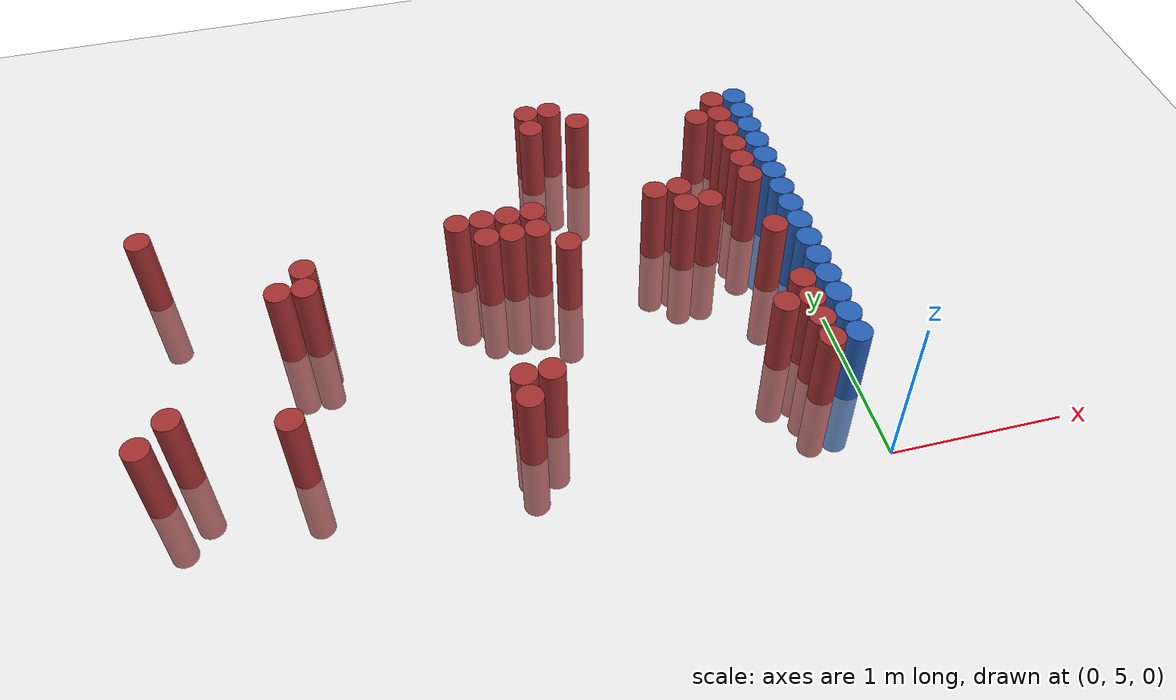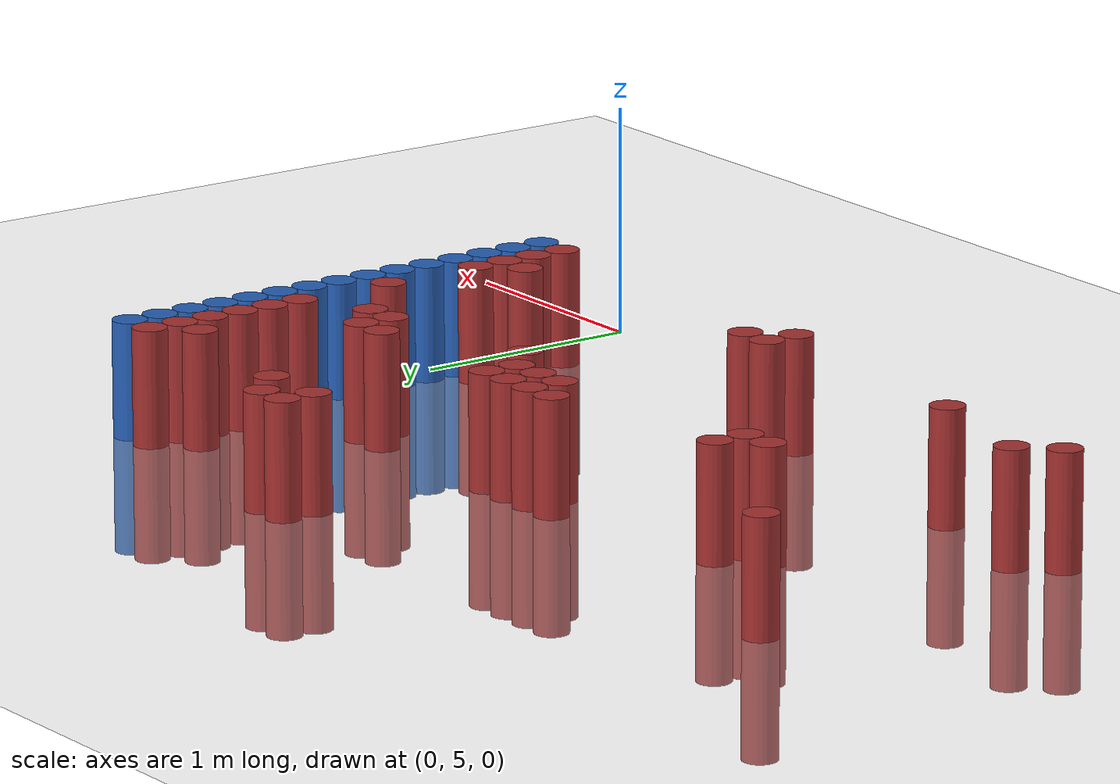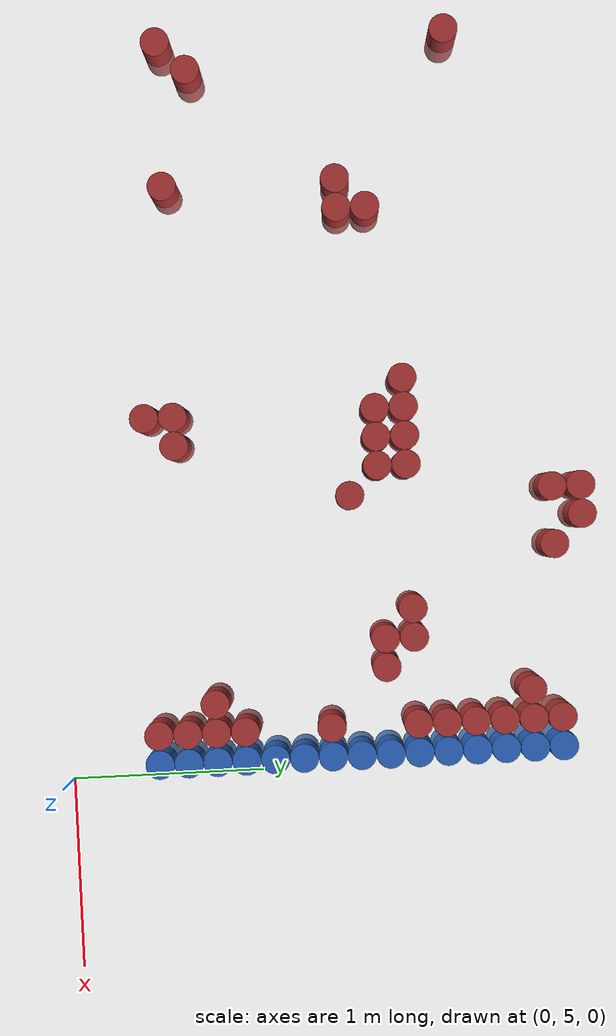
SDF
<sdf version="1.6">
 <world name="default">
  <model name="ground_plane">
   <static>1</static>
   <link name="link">
    <collision name="collision">
     <geometry><plane><normal>0 0 1</normal><size>100 100</size></plane></geometry>
     <surface><friction><ode><mu>100</mu><mu2>50</mu2></ode></friction></surface>
    </collision>
    <visual name="visual">
     <cast_shadows>0</cast_shadows>
     <geometry><plane><normal>0 0 1</normal><size>100 100</size></plane></geometry>
     <material>
      <script><uri>file://media/materials/scripts/gazebo.material</uri><name>Gazebo/Grey</name></script>
     </material>
    </visual>
   </link>
  </model>
  <model name="unit_cylinder_163">
   <static>1</static>
   <pose>-3.825000 5.625000 0.000000 0.000000 0.000000 0.000000</pose>
   <link name="link">
    <inertial>
     <mass>1</mass>
     <inertia><ixx>0.145833</ixx><ixy>0</ixy><ixz>0</ixz><iyy>0.145833</iyy><iyz>0</iyz><izz>0.125</izz></inertia>
    </inertial>
    <collision name="collision">
     <geometry><cylinder><radius>0.075000</radius><length>1</length></cylinder></geometry>
    </collision>
    <visual name="visual">
     <geometry><cylinder><radius>0.075000</radius><length>1</length></cylinder></geometry>
     <material>
      <ambient>0.648000 0.192000 0.192000 1</ambient>
      <diffuse>0.648000 0.192000 0.192000 1</diffuse>
     </material>
     <material>
      <script><name>Gazebo/Grey</name><uri>file://media/materials/scripts/gazebo.material</uri></script>
     </material>
    </visual>
   </link>
  </model>
  <model name="unit_cylinder_164">
   <static>1</static>
   <pose>-3.825000 7.125000 0.000000 0.000000 0.000000 0.000000</pose>
   <link name="link">
    <inertial>
     <mass>1</mass>
     <inertia><ixx>0.145833</ixx><ixy>0</ixy><ixz>0</ixz><iyy>0.145833</iyy><iyz>0</iyz><izz>0.125</izz></inertia>
    </inertial>
    <collision name="collision">
     <geometry><cylinder><radius>0.075000</radius><length>1</length></cylinder></geometry>
    </collision>
    <visual name="visual">
     <geometry><cylinder><radius>0.075000</radius><length>1</length></cylinder></geometry>
     <material>
      <ambient>0.648000 0.192000 0.192000 1</ambient>
      <diffuse>0.648000 0.192000 0.192000 1</diffuse>
     </material>
     <material>
      <script><name>Gazebo/Grey</name><uri>file://media/materials/scripts/gazebo.material</uri></script>
     </material>
    </visual>
   </link>
  </model>
  <model name="unit_cylinder_165">
   <static>1</static>
   <pose>-3.675000 5.775000 0.000000 0.000000 0.000000 0.000000</pose>
   <link name="link">
    <inertial>
     <mass>1</mass>
     <inertia><ixx>0.145833</ixx><ixy>0</ixy><ixz>0</ixz><iyy>0.145833</iyy><iyz>0</iyz><izz>0.125</izz></inertia>
    </inertial>
    <collision name="collision">
     <geometry><cylinder><radius>0.075000</radius><length>1</length></cylinder></geometry>
    </collision>
    <visual name="visual">
     <geometry><cylinder><radius>0.075000</radius><length>1</length></cylinder></geometry>
     <material>
      <ambient>0.648000 0.192000 0.192000 1</ambient>
      <diffuse>0.648000 0.192000 0.192000 1</diffuse>
     </material>
     <material>
      <script><name>Gazebo/Grey</name><uri>file://media/materials/scripts/gazebo.material</uri></script>
     </material>
    </visual>
   </link>
  </model>
  <model name="unit_cylinder_167">
   <static>1</static>
   <pose>-3.075000 5.625000 0.000000 0.000000 0.000000 0.000000</pose>
   <link name="link">
    <inertial>
     <mass>1</mass>
     <inertia><ixx>0.145833</ixx><ixy>0</ixy><ixz>0</ixz><iyy>0.145833</iyy><iyz>0</iyz><izz>0.125</izz></inertia>
    </inertial>
    <collision name="collision">
     <geometry><cylinder><radius>0.075000</radius><length>1</length></cylinder></geometry>
    </collision>
    <visual name="visual">
     <geometry><cylinder><radius>0.075000</radius><length>1</length></cylinder></geometry>
     <material>
      <ambient>0.648000 0.192000 0.192000 1</ambient>
      <diffuse>0.648000 0.192000 0.192000 1</diffuse>
     </material>
     <material>
      <script><name>Gazebo/Grey</name><uri>file://media/materials/scripts/gazebo.material</uri></script>
     </material>
    </visual>
   </link>
  </model>
  <model name="unit_cylinder_168">
   <static>1</static>
   <pose>-3.075000 6.525000 0.000000 0.000000 0.000000 0.000000</pose>
   <link name="link">
    <inertial>
     <mass>1</mass>
     <inertia><ixx>0.145833</ixx><ixy>0</ixy><ixz>0</ixz><iyy>0.145833</iyy><iyz>0</iyz><izz>0.125</izz></inertia>
    </inertial>
    <collision name="collision">
     <geometry><cylinder><radius>0.075000</radius><length>1</length></cylinder></geometry>
    </collision>
    <visual name="visual">
     <geometry><cylinder><radius>0.075000</radius><length>1</length></cylinder></geometry>
     <material>
      <ambient>0.648000 0.192000 0.192000 1</ambient>
      <diffuse>0.648000 0.192000 0.192000 1</diffuse>
     </material>
     <material>
      <script><name>Gazebo/Grey</name><uri>file://media/materials/scripts/gazebo.material</uri></script>
     </material>
    </visual>
   </link>
  </model>
  <model name="unit_cylinder_170">
   <static>1</static>
   <pose>-2.925000 6.525000 0.000000 0.000000 0.000000 0.000000</pose>
   <link name="link">
    <inertial>
     <mass>1</mass>
     <inertia><ixx>0.145833</ixx><ixy>0</ixy><ixz>0</ixz><iyy>0.145833</iyy><iyz>0</iyz><izz>0.125</izz></inertia>
    </inertial>
    <collision name="collision">
     <geometry><cylinder><radius>0.075000</radius><length>1</length></cylinder></geometry>
    </collision>
    <visual name="visual">
     <geometry><cylinder><radius>0.075000</radius><length>1</length></cylinder></geometry>
     <material>
      <ambient>0.648000 0.192000 0.192000 1</ambient>
      <diffuse>0.648000 0.192000 0.192000 1</diffuse>
     </material>
     <material>
      <script><name>Gazebo/Grey</name><uri>file://media/materials/scripts/gazebo.material</uri></script>
     </material>
    </visual>
   </link>
  </model>
  <model name="unit_cylinder_171">
   <static>1</static>
   <pose>-2.925000 6.675000 0.000000 0.000000 0.000000 0.000000</pose>
   <link name="link">
    <inertial>
     <mass>1</mass>
     <inertia><ixx>0.145833</ixx><ixy>0</ixy><ixz>0</ixz><iyy>0.145833</iyy><iyz>0</iyz><izz>0.125</izz></inertia>
    </inertial>
    <collision name="collision">
     <geometry><cylinder><radius>0.075000</radius><length>1</length></cylinder></geometry>
    </collision>
    <visual name="visual">
     <geometry><cylinder><radius>0.075000</radius><length>1</length></cylinder></geometry>
     <material>
      <ambient>0.648000 0.192000 0.192000 1</ambient>
      <diffuse>0.648000 0.192000 0.192000 1</diffuse>
     </material>
     <material>
      <script><name>Gazebo/Grey</name><uri>file://media/materials/scripts/gazebo.material</uri></script>
     </material>
    </visual>
   </link>
  </model>
  <model name="unit_cylinder_184">
   <static>1</static>
   <pose>-2.025000 6.825000 0.000000 0.000000 0.000000 0.000000</pose>
   <link name="link">
    <inertial>
     <mass>1</mass>
     <inertia><ixx>0.145833</ixx><ixy>0</ixy><ixz>0</ixz><iyy>0.145833</iyy><iyz>0</iyz><izz>0.125</izz></inertia>
    </inertial>
    <collision name="collision">
     <geometry><cylinder><radius>0.075000</radius><length>1</length></cylinder></geometry>
    </collision>
    <visual name="visual">
     <geometry><cylinder><radius>0.075000</radius><length>1</length></cylinder></geometry>
     <material>
      <ambient>0.648000 0.192000 0.192000 1</ambient>
      <diffuse>0.648000 0.192000 0.192000 1</diffuse>
     </material>
     <material>
      <script><name>Gazebo/Grey</name><uri>file://media/materials/scripts/gazebo.material</uri></script>
     </material>
    </visual>
   </link>
  </model>
  <model name="unit_cylinder_185">
   <static>1</static>
   <pose>-1.875000 5.475000 0.000000 0.000000 0.000000 0.000000</pose>
   <link name="link">
    <inertial>
     <mass>1</mass>
     <inertia><ixx>0.145833</ixx><ixy>0</ixy><ixz>0</ixz><iyy>0.145833</iyy><iyz>0</iyz><izz>0.125</izz></inertia>
    </inertial>
    <collision name="collision">
     <geometry><cylinder><radius>0.075000</radius><length>1</length></cylinder></geometry>
    </collision>
    <visual name="visual">
     <geometry><cylinder><radius>0.075000</radius><length>1</length></cylinder></geometry>
     <material>
      <ambient>0.648000 0.192000 0.192000 1</ambient>
      <diffuse>0.648000 0.192000 0.192000 1</diffuse>
     </material>
     <material>
      <script><name>Gazebo/Grey</name><uri>file://media/materials/scripts/gazebo.material</uri></script>
     </material>
    </visual>
   </link>
  </model>
  <model name="unit_cylinder_186">
   <static>1</static>
   <pose>-1.875000 5.625000 0.000000 0.000000 0.000000 0.000000</pose>
   <link name="link">
    <inertial>
     <mass>1</mass>
     <inertia><ixx>0.145833</ixx><ixy>0</ixy><ixz>0</ixz><iyy>0.145833</iyy><iyz>0</iyz><izz>0.125</izz></inertia>
    </inertial>
    <collision name="collision">
     <geometry><cylinder><radius>0.075000</radius><length>1</length></cylinder></geometry>
    </collision>
    <visual name="visual">
     <geometry><cylinder><radius>0.075000</radius><length>1</length></cylinder></geometry>
     <material>
      <ambient>0.648000 0.192000 0.192000 1</ambient>
      <diffuse>0.648000 0.192000 0.192000 1</diffuse>
     </material>
     <material>
      <script><name>Gazebo/Grey</name><uri>file://media/materials/scripts/gazebo.material</uri></script>
     </material>
    </visual>
   </link>
  </model>
  <model name="unit_cylinder_187">
   <static>1</static>
   <pose>-1.875000 6.675000 0.000000 0.000000 0.000000 0.000000</pose>
   <link name="link">
    <inertial>
     <mass>1</mass>
     <inertia><ixx>0.145833</ixx><ixy>0</ixy><ixz>0</ixz><iyy>0.145833</iyy><iyz>0</iyz><izz>0.125</izz></inertia>
    </inertial>
    <collision name="collision">
     <geometry><cylinder><radius>0.075000</radius><length>1</length></cylinder></geometry>
    </collision>
    <visual name="visual">
     <geometry><cylinder><radius>0.075000</radius><length>1</length></cylinder></geometry>
     <material>
      <ambient>0.648000 0.192000 0.192000 1</ambient>
      <diffuse>0.648000 0.192000 0.192000 1</diffuse>
     </material>
     <material>
      <script><name>Gazebo/Grey</name><uri>file://media/materials/scripts/gazebo.material</uri></script>
     </material>
    </visual>
   </link>
  </model>
  <model name="unit_cylinder_188">
   <static>1</static>
   <pose>-1.875000 6.825000 0.000000 0.000000 0.000000 0.000000</pose>
   <link name="link">
    <inertial>
     <mass>1</mass>
     <inertia><ixx>0.145833</ixx><ixy>0</ixy><ixz>0</ixz><iyy>0.145833</iyy><iyz>0</iyz><izz>0.125</izz></inertia>
    </inertial>
    <collision name="collision">
     <geometry><cylinder><radius>0.075000</radius><length>1</length></cylinder></geometry>
    </collision>
    <visual name="visual">
     <geometry><cylinder><radius>0.075000</radius><length>1</length></cylinder></geometry>
     <material>
      <ambient>0.648000 0.192000 0.192000 1</ambient>
      <diffuse>0.648000 0.192000 0.192000 1</diffuse>
     </material>
     <material>
      <script><name>Gazebo/Grey</name><uri>file://media/materials/scripts/gazebo.material</uri></script>
     </material>
    </visual>
   </link>
  </model>
  <model name="unit_cylinder_190">
   <static>1</static>
   <pose>-1.725000 5.625000 0.000000 0.000000 0.000000 0.000000</pose>
   <link name="link">
    <inertial>
     <mass>1</mass>
     <inertia><ixx>0.145833</ixx><ixy>0</ixy><ixz>0</ixz><iyy>0.145833</iyy><iyz>0</iyz><izz>0.125</izz></inertia>
    </inertial>
    <collision name="collision">
     <geometry><cylinder><radius>0.075000</radius><length>1</length></cylinder></geometry>
    </collision>
    <visual name="visual">
     <geometry><cylinder><radius>0.075000</radius><length>1</length></cylinder></geometry>
     <material>
      <ambient>0.648000 0.192000 0.192000 1</ambient>
      <diffuse>0.648000 0.192000 0.192000 1</diffuse>
     </material>
     <material>
      <script><name>Gazebo/Grey</name><uri>file://media/materials/scripts/gazebo.material</uri></script>
     </material>
    </visual>
   </link>
  </model>
  <model name="unit_cylinder_191">
   <static>1</static>
   <pose>-1.725000 6.675000 0.000000 0.000000 0.000000 0.000000</pose>
   <link name="link">
    <inertial>
     <mass>1</mass>
     <inertia><ixx>0.145833</ixx><ixy>0</ixy><ixz>0</ixz><iyy>0.145833</iyy><iyz>0</iyz><izz>0.125</izz></inertia>
    </inertial>
    <collision name="collision">
     <geometry><cylinder><radius>0.075000</radius><length>1</length></cylinder></geometry>
    </collision>
    <visual name="visual">
     <geometry><cylinder><radius>0.075000</radius><length>1</length></cylinder></geometry>
     <material>
      <ambient>0.648000 0.192000 0.192000 1</ambient>
      <diffuse>0.648000 0.192000 0.192000 1</diffuse>
     </material>
     <material>
      <script><name>Gazebo/Grey</name><uri>file://media/materials/scripts/gazebo.material</uri></script>
     </material>
    </visual>
   </link>
  </model>
  <model name="unit_cylinder_192">
   <static>1</static>
   <pose>-1.725000 6.825000 0.000000 0.000000 0.000000 0.000000</pose>
   <link name="link">
    <inertial>
     <mass>1</mass>
     <inertia><ixx>0.145833</ixx><ixy>0</ixy><ixz>0</ixz><iyy>0.145833</iyy><iyz>0</iyz><izz>0.125</izz></inertia>
    </inertial>
    <collision name="collision">
     <geometry><cylinder><radius>0.075000</radius><length>1</length></cylinder></geometry>
    </collision>
    <visual name="visual">
     <geometry><cylinder><radius>0.075000</radius><length>1</length></cylinder></geometry>
     <material>
      <ambient>0.648000 0.192000 0.192000 1</ambient>
      <diffuse>0.648000 0.192000 0.192000 1</diffuse>
     </material>
     <material>
      <script><name>Gazebo/Grey</name><uri>file://media/materials/scripts/gazebo.material</uri></script>
     </material>
    </visual>
   </link>
  </model>
  <model name="unit_cylinder_195">
   <static>1</static>
   <pose>-1.575000 6.675000 0.000000 0.000000 0.000000 0.000000</pose>
   <link name="link">
    <inertial>
     <mass>1</mass>
     <inertia><ixx>0.145833</ixx><ixy>0</ixy><ixz>0</ixz><iyy>0.145833</iyy><iyz>0</iyz><izz>0.125</izz></inertia>
    </inertial>
    <collision name="collision">
     <geometry><cylinder><radius>0.075000</radius><length>1</length></cylinder></geometry>
    </collision>
    <visual name="visual">
     <geometry><cylinder><radius>0.075000</radius><length>1</length></cylinder></geometry>
     <material>
      <ambient>0.648000 0.192000 0.192000 1</ambient>
      <diffuse>0.648000 0.192000 0.192000 1</diffuse>
     </material>
     <material>
      <script><name>Gazebo/Grey</name><uri>file://media/materials/scripts/gazebo.material</uri></script>
     </material>
    </visual>
   </link>
  </model>
  <model name="unit_cylinder_196">
   <static>1</static>
   <pose>-1.575000 6.825000 0.000000 0.000000 0.000000 0.000000</pose>
   <link name="link">
    <inertial>
     <mass>1</mass>
     <inertia><ixx>0.145833</ixx><ixy>0</ixy><ixz>0</ixz><iyy>0.145833</iyy><iyz>0</iyz><izz>0.125</izz></inertia>
    </inertial>
    <collision name="collision">
     <geometry><cylinder><radius>0.075000</radius><length>1</length></cylinder></geometry>
    </collision>
    <visual name="visual">
     <geometry><cylinder><radius>0.075000</radius><length>1</length></cylinder></geometry>
     <material>
      <ambient>0.648000 0.192000 0.192000 1</ambient>
      <diffuse>0.648000 0.192000 0.192000 1</diffuse>
     </material>
     <material>
      <script><name>Gazebo/Grey</name><uri>file://media/materials/scripts/gazebo.material</uri></script>
     </material>
    </visual>
   </link>
  </model>
  <model name="unit_cylinder_200">
   <static>1</static>
   <pose>-1.425000 6.525000 0.000000 0.000000 0.000000 0.000000</pose>
   <link name="link">
    <inertial>
     <mass>1</mass>
     <inertia><ixx>0.145833</ixx><ixy>0</ixy><ixz>0</ixz><iyy>0.145833</iyy><iyz>0</iyz><izz>0.125</izz></inertia>
    </inertial>
    <collision name="collision">
     <geometry><cylinder><radius>0.075000</radius><length>1</length></cylinder></geometry>
    </collision>
    <visual name="visual">
     <geometry><cylinder><radius>0.075000</radius><length>1</length></cylinder></geometry>
     <material>
      <ambient>0.648000 0.192000 0.192000 1</ambient>
      <diffuse>0.648000 0.192000 0.192000 1</diffuse>
     </material>
     <material>
      <script><name>Gazebo/Grey</name><uri>file://media/materials/scripts/gazebo.material</uri></script>
     </material>
    </visual>
   </link>
  </model>
  <model name="unit_cylinder_201">
   <static>1</static>
   <pose>-1.425000 7.575000 0.000000 0.000000 0.000000 0.000000</pose>
   <link name="link">
    <inertial>
     <mass>1</mass>
     <inertia><ixx>0.145833</ixx><ixy>0</ixy><ixz>0</ixz><iyy>0.145833</iyy><iyz>0</iyz><izz>0.125</izz></inertia>
    </inertial>
    <collision name="collision">
     <geometry><cylinder><radius>0.075000</radius><length>1</length></cylinder></geometry>
    </collision>
    <visual name="visual">
     <geometry><cylinder><radius>0.075000</radius><length>1</length></cylinder></geometry>
     <material>
      <ambient>0.648000 0.192000 0.192000 1</ambient>
      <diffuse>0.648000 0.192000 0.192000 1</diffuse>
     </material>
     <material>
      <script><name>Gazebo/Grey</name><uri>file://media/materials/scripts/gazebo.material</uri></script>
     </material>
    </visual>
   </link>
  </model>
  <model name="unit_cylinder_202">
   <static>1</static>
   <pose>-1.425000 7.725000 0.000000 0.000000 0.000000 0.000000</pose>
   <link name="link">
    <inertial>
     <mass>1</mass>
     <inertia><ixx>0.145833</ixx><ixy>0</ixy><ixz>0</ixz><iyy>0.145833</iyy><iyz>0</iyz><izz>0.125</izz></inertia>
    </inertial>
    <collision name="collision">
     <geometry><cylinder><radius>0.075000</radius><length>1</length></cylinder></geometry>
    </collision>
    <visual name="visual">
     <geometry><cylinder><radius>0.075000</radius><length>1</length></cylinder></geometry>
     <material>
      <ambient>0.648000 0.192000 0.192000 1</ambient>
      <diffuse>0.648000 0.192000 0.192000 1</diffuse>
     </material>
     <material>
      <script><name>Gazebo/Grey</name><uri>file://media/materials/scripts/gazebo.material</uri></script>
     </material>
    </visual>
   </link>
  </model>
  <model name="unit_cylinder_207">
   <static>1</static>
   <pose>-1.275000 7.725000 0.000000 0.000000 0.000000 0.000000</pose>
   <link name="link">
    <inertial>
     <mass>1</mass>
     <inertia><ixx>0.145833</ixx><ixy>0</ixy><ixz>0</ixz><iyy>0.145833</iyy><iyz>0</iyz><izz>0.125</izz></inertia>
    </inertial>
    <collision name="collision">
     <geometry><cylinder><radius>0.075000</radius><length>1</length></cylinder></geometry>
    </collision>
    <visual name="visual">
     <geometry><cylinder><radius>0.075000</radius><length>1</length></cylinder></geometry>
     <material>
      <ambient>0.648000 0.192000 0.192000 1</ambient>
      <diffuse>0.648000 0.192000 0.192000 1</diffuse>
     </material>
     <material>
      <script><name>Gazebo/Grey</name><uri>file://media/materials/scripts/gazebo.material</uri></script>
     </material>
    </visual>
   </link>
  </model>
  <model name="unit_cylinder_211">
   <static>1</static>
   <pose>-1.125000 7.575000 0.000000 0.000000 0.000000 0.000000</pose>
   <link name="link">
    <inertial>
     <mass>1</mass>
     <inertia><ixx>0.145833</ixx><ixy>0</ixy><ixz>0</ixz><iyy>0.145833</iyy><iyz>0</iyz><izz>0.125</izz></inertia>
    </inertial>
    <collision name="collision">
     <geometry><cylinder><radius>0.075000</radius><length>1</length></cylinder></geometry>
    </collision>
    <visual name="visual">
     <geometry><cylinder><radius>0.075000</radius><length>1</length></cylinder></geometry>
     <material>
      <ambient>0.648000 0.192000 0.192000 1</ambient>
      <diffuse>0.648000 0.192000 0.192000 1</diffuse>
     </material>
     <material>
      <script><name>Gazebo/Grey</name><uri>file://media/materials/scripts/gazebo.material</uri></script>
     </material>
    </visual>
   </link>
  </model>
  <model name="unit_cylinder_212">
   <static>1</static>
   <pose>-0.825000 6.825000 0.000000 0.000000 0.000000 0.000000</pose>
   <link name="link">
    <inertial>
     <mass>1</mass>
     <inertia><ixx>0.145833</ixx><ixy>0</ixy><ixz>0</ixz><iyy>0.145833</iyy><iyz>0</iyz><izz>0.125</izz></inertia>
    </inertial>
    <collision name="collision">
     <geometry><cylinder><radius>0.075000</radius><length>1</length></cylinder></geometry>
    </collision>
    <visual name="visual">
     <geometry><cylinder><radius>0.075000</radius><length>1</length></cylinder></geometry>
     <material>
      <ambient>0.648000 0.192000 0.192000 1</ambient>
      <diffuse>0.648000 0.192000 0.192000 1</diffuse>
     </material>
     <material>
      <script><name>Gazebo/Grey</name><uri>file://media/materials/scripts/gazebo.material</uri></script>
     </material>
    </visual>
   </link>
  </model>
  <model name="unit_cylinder_214">
   <static>1</static>
   <pose>-0.675000 6.675000 0.000000 0.000000 0.000000 0.000000</pose>
   <link name="link">
    <inertial>
     <mass>1</mass>
     <inertia><ixx>0.145833</ixx><ixy>0</ixy><ixz>0</ixz><iyy>0.145833</iyy><iyz>0</iyz><izz>0.125</izz></inertia>
    </inertial>
    <collision name="collision">
     <geometry><cylinder><radius>0.075000</radius><length>1</length></cylinder></geometry>
    </collision>
    <visual name="visual">
     <geometry><cylinder><radius>0.075000</radius><length>1</length></cylinder></geometry>
     <material>
      <ambient>0.648000 0.192000 0.192000 1</ambient>
      <diffuse>0.648000 0.192000 0.192000 1</diffuse>
     </material>
     <material>
      <script><name>Gazebo/Grey</name><uri>file://media/materials/scripts/gazebo.material</uri></script>
     </material>
    </visual>
   </link>
  </model>
  <model name="unit_cylinder_215">
   <static>1</static>
   <pose>-0.675000 6.825000 0.000000 0.000000 0.000000 0.000000</pose>
   <link name="link">
    <inertial>
     <mass>1</mass>
     <inertia><ixx>0.145833</ixx><ixy>0</ixy><ixz>0</ixz><iyy>0.145833</iyy><iyz>0</iyz><izz>0.125</izz></inertia>
    </inertial>
    <collision name="collision">
     <geometry><cylinder><radius>0.075000</radius><length>1</length></cylinder></geometry>
    </collision>
    <visual name="visual">
     <geometry><cylinder><radius>0.075000</radius><length>1</length></cylinder></geometry>
     <material>
      <ambient>0.648000 0.192000 0.192000 1</ambient>
      <diffuse>0.648000 0.192000 0.192000 1</diffuse>
     </material>
     <material>
      <script><name>Gazebo/Grey</name><uri>file://media/materials/scripts/gazebo.material</uri></script>
     </material>
    </visual>
   </link>
  </model>
  <model name="unit_cylinder_218">
   <static>1</static>
   <pose>-0.525000 6.675000 0.000000 0.000000 0.000000 0.000000</pose>
   <link name="link">
    <inertial>
     <mass>1</mass>
     <inertia><ixx>0.145833</ixx><ixy>0</ixy><ixz>0</ixz><iyy>0.145833</iyy><iyz>0</iyz><izz>0.125</izz></inertia>
    </inertial>
    <collision name="collision">
     <geometry><cylinder><radius>0.075000</radius><length>1</length></cylinder></geometry>
    </collision>
    <visual name="visual">
     <geometry><cylinder><radius>0.075000</radius><length>1</length></cylinder></geometry>
     <material>
      <ambient>0.648000 0.192000 0.192000 1</ambient>
      <diffuse>0.648000 0.192000 0.192000 1</diffuse>
     </material>
     <material>
      <script><name>Gazebo/Grey</name><uri>file://media/materials/scripts/gazebo.material</uri></script>
     </material>
    </visual>
   </link>
  </model>
  <model name="unit_cylinder_219">
   <static>1</static>
   <pose>-0.375000 5.775000 0.000000 0.000000 0.000000 0.000000</pose>
   <link name="link">
    <inertial>
     <mass>1</mass>
     <inertia><ixx>0.145833</ixx><ixy>0</ixy><ixz>0</ixz><iyy>0.145833</iyy><iyz>0</iyz><izz>0.125</izz></inertia>
    </inertial>
    <collision name="collision">
     <geometry><cylinder><radius>0.075000</radius><length>1</length></cylinder></geometry>
    </collision>
    <visual name="visual">
     <geometry><cylinder><radius>0.075000</radius><length>1</length></cylinder></geometry>
     <material>
      <ambient>0.648000 0.192000 0.192000 1</ambient>
      <diffuse>0.648000 0.192000 0.192000 1</diffuse>
     </material>
     <material>
      <script><name>Gazebo/Grey</name><uri>file://media/materials/scripts/gazebo.material</uri></script>
     </material>
    </visual>
   </link>
  </model>
  <model name="unit_cylinder_220">
   <static>1</static>
   <pose>-0.375000 7.425000 0.000000 0.000000 0.000000 0.000000</pose>
   <link name="link">
    <inertial>
     <mass>1</mass>
     <inertia><ixx>0.145833</ixx><ixy>0</ixy><ixz>0</ixz><iyy>0.145833</iyy><iyz>0</iyz><izz>0.125</izz></inertia>
    </inertial>
    <collision name="collision">
     <geometry><cylinder><radius>0.075000</radius><length>1</length></cylinder></geometry>
    </collision>
    <visual name="visual">
     <geometry><cylinder><radius>0.075000</radius><length>1</length></cylinder></geometry>
     <material>
      <ambient>0.648000 0.192000 0.192000 1</ambient>
      <diffuse>0.648000 0.192000 0.192000 1</diffuse>
     </material>
     <material>
      <script><name>Gazebo/Grey</name><uri>file://media/materials/scripts/gazebo.material</uri></script>
     </material>
    </visual>
   </link>
  </model>
  <model name="unit_cylinder_224">
   <static>1</static>
   <pose>-0.225000 5.475000 0.000000 0.000000 0.000000 0.000000</pose>
   <link name="link">
    <inertial>
     <mass>1</mass>
     <inertia><ixx>0.145833</ixx><ixy>0</ixy><ixz>0</ixz><iyy>0.145833</iyy><iyz>0</iyz><izz>0.125</izz></inertia>
    </inertial>
    <collision name="collision">
     <geometry><cylinder><radius>0.075000</radius><length>1</length></cylinder></geometry>
    </collision>
    <visual name="visual">
     <geometry><cylinder><radius>0.075000</radius><length>1</length></cylinder></geometry>
     <material>
      <ambient>0.648000 0.192000 0.192000 1</ambient>
      <diffuse>0.648000 0.192000 0.192000 1</diffuse>
     </material>
     <material>
      <script><name>Gazebo/Grey</name><uri>file://media/materials/scripts/gazebo.material</uri></script>
     </material>
    </visual>
   </link>
  </model>
  <model name="unit_cylinder_225">
   <static>1</static>
   <pose>-0.225000 5.625000 0.000000 0.000000 0.000000 0.000000</pose>
   <link name="link">
    <inertial>
     <mass>1</mass>
     <inertia><ixx>0.145833</ixx><ixy>0</ixy><ixz>0</ixz><iyy>0.145833</iyy><iyz>0</iyz><izz>0.125</izz></inertia>
    </inertial>
    <collision name="collision">
     <geometry><cylinder><radius>0.075000</radius><length>1</length></cylinder></geometry>
    </collision>
    <visual name="visual">
     <geometry><cylinder><radius>0.075000</radius><length>1</length></cylinder></geometry>
     <material>
      <ambient>0.648000 0.192000 0.192000 1</ambient>
      <diffuse>0.648000 0.192000 0.192000 1</diffuse>
     </material>
     <material>
      <script><name>Gazebo/Grey</name><uri>file://media/materials/scripts/gazebo.material</uri></script>
     </material>
    </visual>
   </link>
  </model>
  <model name="unit_cylinder_226">
   <static>1</static>
   <pose>-0.225000 5.775000 0.000000 0.000000 0.000000 0.000000</pose>
   <link name="link">
    <inertial>
     <mass>1</mass>
     <inertia><ixx>0.145833</ixx><ixy>0</ixy><ixz>0</ixz><iyy>0.145833</iyy><iyz>0</iyz><izz>0.125</izz></inertia>
    </inertial>
    <collision name="collision">
     <geometry><cylinder><radius>0.075000</radius><length>1</length></cylinder></geometry>
    </collision>
    <visual name="visual">
     <geometry><cylinder><radius>0.075000</radius><length>1</length></cylinder></geometry>
     <material>
      <ambient>0.648000 0.192000 0.192000 1</ambient>
      <diffuse>0.648000 0.192000 0.192000 1</diffuse>
     </material>
     <material>
      <script><name>Gazebo/Grey</name><uri>file://media/materials/scripts/gazebo.material</uri></script>
     </material>
    </visual>
   </link>
  </model>
  <model name="unit_cylinder_227">
   <static>1</static>
   <pose>-0.225000 5.925000 0.000000 0.000000 0.000000 0.000000</pose>
   <link name="link">
    <inertial>
     <mass>1</mass>
     <inertia><ixx>0.145833</ixx><ixy>0</ixy><ixz>0</ixz><iyy>0.145833</iyy><iyz>0</iyz><izz>0.125</izz></inertia>
    </inertial>
    <collision name="collision">
     <geometry><cylinder><radius>0.075000</radius><length>1</length></cylinder></geometry>
    </collision>
    <visual name="visual">
     <geometry><cylinder><radius>0.075000</radius><length>1</length></cylinder></geometry>
     <material>
      <ambient>0.648000 0.192000 0.192000 1</ambient>
      <diffuse>0.648000 0.192000 0.192000 1</diffuse>
     </material>
     <material>
      <script><name>Gazebo/Grey</name><uri>file://media/materials/scripts/gazebo.material</uri></script>
     </material>
    </visual>
   </link>
  </model>
  <model name="unit_cylinder_228">
   <static>1</static>
   <pose>-0.225000 6.375000 0.000000 0.000000 0.000000 0.000000</pose>
   <link name="link">
    <inertial>
     <mass>1</mass>
     <inertia><ixx>0.145833</ixx><ixy>0</ixy><ixz>0</ixz><iyy>0.145833</iyy><iyz>0</iyz><izz>0.125</izz></inertia>
    </inertial>
    <collision name="collision">
     <geometry><cylinder><radius>0.075000</radius><length>1</length></cylinder></geometry>
    </collision>
    <visual name="visual">
     <geometry><cylinder><radius>0.075000</radius><length>1</length></cylinder></geometry>
     <material>
      <ambient>0.648000 0.192000 0.192000 1</ambient>
      <diffuse>0.648000 0.192000 0.192000 1</diffuse>
     </material>
     <material>
      <script><name>Gazebo/Grey</name><uri>file://media/materials/scripts/gazebo.material</uri></script>
     </material>
    </visual>
   </link>
  </model>
  <model name="unit_cylinder_229">
   <static>1</static>
   <pose>-0.225000 6.825000 0.000000 0.000000 0.000000 0.000000</pose>
   <link name="link">
    <inertial>
     <mass>1</mass>
     <inertia><ixx>0.145833</ixx><ixy>0</ixy><ixz>0</ixz><iyy>0.145833</iyy><iyz>0</iyz><izz>0.125</izz></inertia>
    </inertial>
    <collision name="collision">
     <geometry><cylinder><radius>0.075000</radius><length>1</length></cylinder></geometry>
    </collision>
    <visual name="visual">
     <geometry><cylinder><radius>0.075000</radius><length>1</length></cylinder></geometry>
     <material>
      <ambient>0.648000 0.192000 0.192000 1</ambient>
      <diffuse>0.648000 0.192000 0.192000 1</diffuse>
     </material>
     <material>
      <script><name>Gazebo/Grey</name><uri>file://media/materials/scripts/gazebo.material</uri></script>
     </material>
    </visual>
   </link>
  </model>
  <model name="unit_cylinder_230">
   <static>1</static>
   <pose>-0.225000 6.975000 0.000000 0.000000 0.000000 0.000000</pose>
   <link name="link">
    <inertial>
     <mass>1</mass>
     <inertia><ixx>0.145833</ixx><ixy>0</ixy><ixz>0</ixz><iyy>0.145833</iyy><iyz>0</iyz><izz>0.125</izz></inertia>
    </inertial>
    <collision name="collision">
     <geometry><cylinder><radius>0.075000</radius><length>1</length></cylinder></geometry>
    </collision>
    <visual name="visual">
     <geometry><cylinder><radius>0.075000</radius><length>1</length></cylinder></geometry>
     <material>
      <ambient>0.648000 0.192000 0.192000 1</ambient>
      <diffuse>0.648000 0.192000 0.192000 1</diffuse>
     </material>
     <material>
      <script><name>Gazebo/Grey</name><uri>file://media/materials/scripts/gazebo.material</uri></script>
     </material>
    </visual>
   </link>
  </model>
  <model name="unit_cylinder_231">
   <static>1</static>
   <pose>-0.225000 7.125000 0.000000 0.000000 0.000000 0.000000</pose>
   <link name="link">
    <inertial>
     <mass>1</mass>
     <inertia><ixx>0.145833</ixx><ixy>0</ixy><ixz>0</ixz><iyy>0.145833</iyy><iyz>0</iyz><izz>0.125</izz></inertia>
    </inertial>
    <collision name="collision">
     <geometry><cylinder><radius>0.075000</radius><length>1</length></cylinder></geometry>
    </collision>
    <visual name="visual">
     <geometry><cylinder><radius>0.075000</radius><length>1</length></cylinder></geometry>
     <material>
      <ambient>0.648000 0.192000 0.192000 1</ambient>
      <diffuse>0.648000 0.192000 0.192000 1</diffuse>
     </material>
     <material>
      <script><name>Gazebo/Grey</name><uri>file://media/materials/scripts/gazebo.material</uri></script>
     </material>
    </visual>
   </link>
  </model>
  <model name="unit_cylinder_232">
   <static>1</static>
   <pose>-0.225000 7.275000 0.000000 0.000000 0.000000 0.000000</pose>
   <link name="link">
    <inertial>
     <mass>1</mass>
     <inertia><ixx>0.145833</ixx><ixy>0</ixy><ixz>0</ixz><iyy>0.145833</iyy><iyz>0</iyz><izz>0.125</izz></inertia>
    </inertial>
    <collision name="collision">
     <geometry><cylinder><radius>0.075000</radius><length>1</length></cylinder></geometry>
    </collision>
    <visual name="visual">
     <geometry><cylinder><radius>0.075000</radius><length>1</length></cylinder></geometry>
     <material>
      <ambient>0.648000 0.192000 0.192000 1</ambient>
      <diffuse>0.648000 0.192000 0.192000 1</diffuse>
     </material>
     <material>
      <script><name>Gazebo/Grey</name><uri>file://media/materials/scripts/gazebo.material</uri></script>
     </material>
    </visual>
   </link>
  </model>
  <model name="unit_cylinder_233">
   <static>1</static>
   <pose>-0.225000 7.425000 0.000000 0.000000 0.000000 0.000000</pose>
   <link name="link">
    <inertial>
     <mass>1</mass>
     <inertia><ixx>0.145833</ixx><ixy>0</ixy><ixz>0</ixz><iyy>0.145833</iyy><iyz>0</iyz><izz>0.125</izz></inertia>
    </inertial>
    <collision name="collision">
     <geometry><cylinder><radius>0.075000</radius><length>1</length></cylinder></geometry>
    </collision>
    <visual name="visual">
     <geometry><cylinder><radius>0.075000</radius><length>1</length></cylinder></geometry>
     <material>
      <ambient>0.648000 0.192000 0.192000 1</ambient>
      <diffuse>0.648000 0.192000 0.192000 1</diffuse>
     </material>
     <material>
      <script><name>Gazebo/Grey</name><uri>file://media/materials/scripts/gazebo.material</uri></script>
     </material>
    </visual>
   </link>
  </model>
  <model name="unit_cylinder_234">
   <static>1</static>
   <pose>-0.225000 7.575000 0.000000 0.000000 0.000000 0.000000</pose>
   <link name="link">
    <inertial>
     <mass>1</mass>
     <inertia><ixx>0.145833</ixx><ixy>0</ixy><ixz>0</ixz><iyy>0.145833</iyy><iyz>0</iyz><izz>0.125</izz></inertia>
    </inertial>
    <collision name="collision">
     <geometry><cylinder><radius>0.075000</radius><length>1</length></cylinder></geometry>
    </collision>
    <visual name="visual">
     <geometry><cylinder><radius>0.075000</radius><length>1</length></cylinder></geometry>
     <material>
      <ambient>0.648000 0.192000 0.192000 1</ambient>
      <diffuse>0.648000 0.192000 0.192000 1</diffuse>
     </material>
     <material>
      <script><name>Gazebo/Grey</name><uri>file://media/materials/scripts/gazebo.material</uri></script>
     </material>
    </visual>
   </link>
  </model>
  <model name="unit_cylinder_245">
   <static>1</static>
   <pose>-0.075000 5.475000 0.000000 0.000000 0.000000 0.000000</pose>
   <link name="link">
    <inertial>
     <mass>1</mass>
     <inertia><ixx>0.145833</ixx><ixy>0</ixy><ixz>0</ixz><iyy>0.145833</iyy><iyz>0</iyz><izz>0.125</izz></inertia>
    </inertial>
    <collision name="collision">
     <geometry><cylinder><radius>0.075000</radius><length>1</length></cylinder></geometry>
    </collision>
    <visual name="visual">
     <geometry><cylinder><radius>0.075000</radius><length>1</length></cylinder></geometry>
     <material>
      <ambient>0.152000 0.379000 0.720000 1</ambient>
      <diffuse>0.152000 0.379000 0.720000 1</diffuse>
     </material>
     <material>
      <script><name>Gazebo/Grey</name><uri>file://media/materials/scripts/gazebo.material</uri></script>
     </material>
    </visual>
   </link>
  </model>
  <model name="unit_cylinder_246">
   <static>1</static>
   <pose>-0.075000 5.625000 0.000000 0.000000 0.000000 0.000000</pose>
   <link name="link">
    <inertial>
     <mass>1</mass>
     <inertia><ixx>0.145833</ixx><ixy>0</ixy><ixz>0</ixz><iyy>0.145833</iyy><iyz>0</iyz><izz>0.125</izz></inertia>
    </inertial>
    <collision name="collision">
     <geometry><cylinder><radius>0.075000</radius><length>1</length></cylinder></geometry>
    </collision>
    <visual name="visual">
     <geometry><cylinder><radius>0.075000</radius><length>1</length></cylinder></geometry>
     <material>
      <ambient>0.152000 0.379000 0.720000 1</ambient>
      <diffuse>0.152000 0.379000 0.720000 1</diffuse>
     </material>
     <material>
      <script><name>Gazebo/Grey</name><uri>file://media/materials/scripts/gazebo.material</uri></script>
     </material>
    </visual>
   </link>
  </model>
  <model name="unit_cylinder_247">
   <static>1</static>
   <pose>-0.075000 5.775000 0.000000 0.000000 0.000000 0.000000</pose>
   <link name="link">
    <inertial>
     <mass>1</mass>
     <inertia><ixx>0.145833</ixx><ixy>0</ixy><ixz>0</ixz><iyy>0.145833</iyy><iyz>0</iyz><izz>0.125</izz></inertia>
    </inertial>
    <collision name="collision">
     <geometry><cylinder><radius>0.075000</radius><length>1</length></cylinder></geometry>
    </collision>
    <visual name="visual">
     <geometry><cylinder><radius>0.075000</radius><length>1</length></cylinder></geometry>
     <material>
      <ambient>0.152000 0.379000 0.720000 1</ambient>
      <diffuse>0.152000 0.379000 0.720000 1</diffuse>
     </material>
     <material>
      <script><name>Gazebo/Grey</name><uri>file://media/materials/scripts/gazebo.material</uri></script>
     </material>
    </visual>
   </link>
  </model>
  <model name="unit_cylinder_248">
   <static>1</static>
   <pose>-0.075000 5.925000 0.000000 0.000000 0.000000 0.000000</pose>
   <link name="link">
    <inertial>
     <mass>1</mass>
     <inertia><ixx>0.145833</ixx><ixy>0</ixy><ixz>0</ixz><iyy>0.145833</iyy><iyz>0</iyz><izz>0.125</izz></inertia>
    </inertial>
    <collision name="collision">
     <geometry><cylinder><radius>0.075000</radius><length>1</length></cylinder></geometry>
    </collision>
    <visual name="visual">
     <geometry><cylinder><radius>0.075000</radius><length>1</length></cylinder></geometry>
     <material>
      <ambient>0.152000 0.379000 0.720000 1</ambient>
      <diffuse>0.152000 0.379000 0.720000 1</diffuse>
     </material>
     <material>
      <script><name>Gazebo/Grey</name><uri>file://media/materials/scripts/gazebo.material</uri></script>
     </material>
    </visual>
   </link>
  </model>
  <model name="unit_cylinder_249">
   <static>1</static>
   <pose>-0.075000 6.075000 0.000000 0.000000 0.000000 0.000000</pose>
   <link name="link">
    <inertial>
     <mass>1</mass>
     <inertia><ixx>0.145833</ixx><ixy>0</ixy><ixz>0</ixz><iyy>0.145833</iyy><iyz>0</iyz><izz>0.125</izz></inertia>
    </inertial>
    <collision name="collision">
     <geometry><cylinder><radius>0.075000</radius><length>1</length></cylinder></geometry>
    </collision>
    <visual name="visual">
     <geometry><cylinder><radius>0.075000</radius><length>1</length></cylinder></geometry>
     <material>
      <ambient>0.152000 0.379000 0.720000 1</ambient>
      <diffuse>0.152000 0.379000 0.720000 1</diffuse>
     </material>
     <material>
      <script><name>Gazebo/Grey</name><uri>file://media/materials/scripts/gazebo.material</uri></script>
     </material>
    </visual>
   </link>
  </model>
  <model name="unit_cylinder_250">
   <static>1</static>
   <pose>-0.075000 6.225000 0.000000 0.000000 0.000000 0.000000</pose>
   <link name="link">
    <inertial>
     <mass>1</mass>
     <inertia><ixx>0.145833</ixx><ixy>0</ixy><ixz>0</ixz><iyy>0.145833</iyy><iyz>0</iyz><izz>0.125</izz></inertia>
    </inertial>
    <collision name="collision">
     <geometry><cylinder><radius>0.075000</radius><length>1</length></cylinder></geometry>
    </collision>
    <visual name="visual">
     <geometry><cylinder><radius>0.075000</radius><length>1</length></cylinder></geometry>
     <material>
      <ambient>0.152000 0.379000 0.720000 1</ambient>
      <diffuse>0.152000 0.379000 0.720000 1</diffuse>
     </material>
     <material>
      <script><name>Gazebo/Grey</name><uri>file://media/materials/scripts/gazebo.material</uri></script>
     </material>
    </visual>
   </link>
  </model>
  <model name="unit_cylinder_251">
   <static>1</static>
   <pose>-0.075000 6.375000 0.000000 0.000000 0.000000 0.000000</pose>
   <link name="link">
    <inertial>
     <mass>1</mass>
     <inertia><ixx>0.145833</ixx><ixy>0</ixy><ixz>0</ixz><iyy>0.145833</iyy><iyz>0</iyz><izz>0.125</izz></inertia>
    </inertial>
    <collision name="collision">
     <geometry><cylinder><radius>0.075000</radius><length>1</length></cylinder></geometry>
    </collision>
    <visual name="visual">
     <geometry><cylinder><radius>0.075000</radius><length>1</length></cylinder></geometry>
     <material>
      <ambient>0.152000 0.379000 0.720000 1</ambient>
      <diffuse>0.152000 0.379000 0.720000 1</diffuse>
     </material>
     <material>
      <script><name>Gazebo/Grey</name><uri>file://media/materials/scripts/gazebo.material</uri></script>
     </material>
    </visual>
   </link>
  </model>
  <model name="unit_cylinder_252">
   <static>1</static>
   <pose>-0.075000 6.525000 0.000000 0.000000 0.000000 0.000000</pose>
   <link name="link">
    <inertial>
     <mass>1</mass>
     <inertia><ixx>0.145833</ixx><ixy>0</ixy><ixz>0</ixz><iyy>0.145833</iyy><iyz>0</iyz><izz>0.125</izz></inertia>
    </inertial>
    <collision name="collision">
     <geometry><cylinder><radius>0.075000</radius><length>1</length></cylinder></geometry>
    </collision>
    <visual name="visual">
     <geometry><cylinder><radius>0.075000</radius><length>1</length></cylinder></geometry>
     <material>
      <ambient>0.152000 0.379000 0.720000 1</ambient>
      <diffuse>0.152000 0.379000 0.720000 1</diffuse>
     </material>
     <material>
      <script><name>Gazebo/Grey</name><uri>file://media/materials/scripts/gazebo.material</uri></script>
     </material>
    </visual>
   </link>
  </model>
  <model name="unit_cylinder_253">
   <static>1</static>
   <pose>-0.075000 6.675000 0.000000 0.000000 0.000000 0.000000</pose>
   <link name="link">
    <inertial>
     <mass>1</mass>
     <inertia><ixx>0.145833</ixx><ixy>0</ixy><ixz>0</ixz><iyy>0.145833</iyy><iyz>0</iyz><izz>0.125</izz></inertia>
    </inertial>
    <collision name="collision">
     <geometry><cylinder><radius>0.075000</radius><length>1</length></cylinder></geometry>
    </collision>
    <visual name="visual">
     <geometry><cylinder><radius>0.075000</radius><length>1</length></cylinder></geometry>
     <material>
      <ambient>0.152000 0.379000 0.720000 1</ambient>
      <diffuse>0.152000 0.379000 0.720000 1</diffuse>
     </material>
     <material>
      <script><name>Gazebo/Grey</name><uri>file://media/materials/scripts/gazebo.material</uri></script>
     </material>
    </visual>
   </link>
  </model>
  <model name="unit_cylinder_254">
   <static>1</static>
   <pose>-0.075000 6.825000 0.000000 0.000000 0.000000 0.000000</pose>
   <link name="link">
    <inertial>
     <mass>1</mass>
     <inertia><ixx>0.145833</ixx><ixy>0</ixy><ixz>0</ixz><iyy>0.145833</iyy><iyz>0</iyz><izz>0.125</izz></inertia>
    </inertial>
    <collision name="collision">
     <geometry><cylinder><radius>0.075000</radius><length>1</length></cylinder></geometry>
    </collision>
    <visual name="visual">
     <geometry><cylinder><radius>0.075000</radius><length>1</length></cylinder></geometry>
     <material>
      <ambient>0.152000 0.379000 0.720000 1</ambient>
      <diffuse>0.152000 0.379000 0.720000 1</diffuse>
     </material>
     <material>
      <script><name>Gazebo/Grey</name><uri>file://media/materials/scripts/gazebo.material</uri></script>
     </material>
    </visual>
   </link>
  </model>
  <model name="unit_cylinder_255">
   <static>1</static>
   <pose>-0.075000 6.975000 0.000000 0.000000 0.000000 0.000000</pose>
   <link name="link">
    <inertial>
     <mass>1</mass>
     <inertia><ixx>0.145833</ixx><ixy>0</ixy><ixz>0</ixz><iyy>0.145833</iyy><iyz>0</iyz><izz>0.125</izz></inertia>
    </inertial>
    <collision name="collision">
     <geometry><cylinder><radius>0.075000</radius><length>1</length></cylinder></geometry>
    </collision>
    <visual name="visual">
     <geometry><cylinder><radius>0.075000</radius><length>1</length></cylinder></geometry>
     <material>
      <ambient>0.152000 0.379000 0.720000 1</ambient>
      <diffuse>0.152000 0.379000 0.720000 1</diffuse>
     </material>
     <material>
      <script><name>Gazebo/Grey</name><uri>file://media/materials/scripts/gazebo.material</uri></script>
     </material>
    </visual>
   </link>
  </model>
  <model name="unit_cylinder_256">
   <static>1</static>
   <pose>-0.075000 7.125000 0.000000 0.000000 0.000000 0.000000</pose>
   <link name="link">
    <inertial>
     <mass>1</mass>
     <inertia><ixx>0.145833</ixx><ixy>0</ixy><ixz>0</ixz><iyy>0.145833</iyy><iyz>0</iyz><izz>0.125</izz></inertia>
    </inertial>
    <collision name="collision">
     <geometry><cylinder><radius>0.075000</radius><length>1</length></cylinder></geometry>
    </collision>
    <visual name="visual">
     <geometry><cylinder><radius>0.075000</radius><length>1</length></cylinder></geometry>
     <material>
      <ambient>0.152000 0.379000 0.720000 1</ambient>
      <diffuse>0.152000 0.379000 0.720000 1</diffuse>
     </material>
     <material>
      <script><name>Gazebo/Grey</name><uri>file://media/materials/scripts/gazebo.material</uri></script>
     </material>
    </visual>
   </link>
  </model>
  <model name="unit_cylinder_257">
   <static>1</static>
   <pose>-0.075000 7.275000 0.000000 0.000000 0.000000 0.000000</pose>
   <link name="link">
    <inertial>
     <mass>1</mass>
     <inertia><ixx>0.145833</ixx><ixy>0</ixy><ixz>0</ixz><iyy>0.145833</iyy><iyz>0</iyz><izz>0.125</izz></inertia>
    </inertial>
    <collision name="collision">
     <geometry><cylinder><radius>0.075000</radius><length>1</length></cylinder></geometry>
    </collision>
    <visual name="visual">
     <geometry><cylinder><radius>0.075000</radius><length>1</length></cylinder></geometry>
     <material>
      <ambient>0.152000 0.379000 0.720000 1</ambient>
      <diffuse>0.152000 0.379000 0.720000 1</diffuse>
     </material>
     <material>
      <script><name>Gazebo/Grey</name><uri>file://media/materials/scripts/gazebo.material</uri></script>
     </material>
    </visual>
   </link>
  </model>
  <model name="unit_cylinder_258">
   <static>1</static>
   <pose>-0.075000 7.425000 0.000000 0.000000 0.000000 0.000000</pose>
   <link name="link">
    <inertial>
     <mass>1</mass>
     <inertia><ixx>0.145833</ixx><ixy>0</ixy><ixz>0</ixz><iyy>0.145833</iyy><iyz>0</iyz><izz>0.125</izz></inertia>
    </inertial>
    <collision name="collision">
     <geometry><cylinder><radius>0.075000</radius><length>1</length></cylinder></geometry>
    </collision>
    <visual name="visual">
     <geometry><cylinder><radius>0.075000</radius><length>1</length></cylinder></geometry>
     <material>
      <ambient>0.152000 0.379000 0.720000 1</ambient>
      <diffuse>0.152000 0.379000 0.720000 1</diffuse>
     </material>
     <material>
      <script><name>Gazebo/Grey</name><uri>file://media/materials/scripts/gazebo.material</uri></script>
     </material>
    </visual>
   </link>
  </model>
  <model name="unit_cylinder_259">
   <static>1</static>
   <pose>-0.075000 7.575000 0.000000 0.000000 0.000000 0.000000</pose>
   <link name="link">
    <inertial>
     <mass>1</mass>
     <inertia><ixx>0.145833</ixx><ixy>0</ixy><ixz>0</ixz><iyy>0.145833</iyy><iyz>0</iyz><izz>0.125</izz></inertia>
    </inertial>
    <collision name="collision">
     <geometry><cylinder><radius>0.075000</radius><length>1</length></cylinder></geometry>
    </collision>
    <visual name="visual">
     <geometry><cylinder><radius>0.075000</radius><length>1</length></cylinder></geometry>
     <material>
      <ambient>0.152000 0.379000 0.720000 1</ambient>
      <diffuse>0.152000 0.379000 0.720000 1</diffuse>
     </material>
     <material>
      <script><name>Gazebo/Grey</name><uri>file://media/materials/scripts/gazebo.material</uri></script>
     </material>
    </visual>
   </link>
  </model>
 </world>
</sdf>
